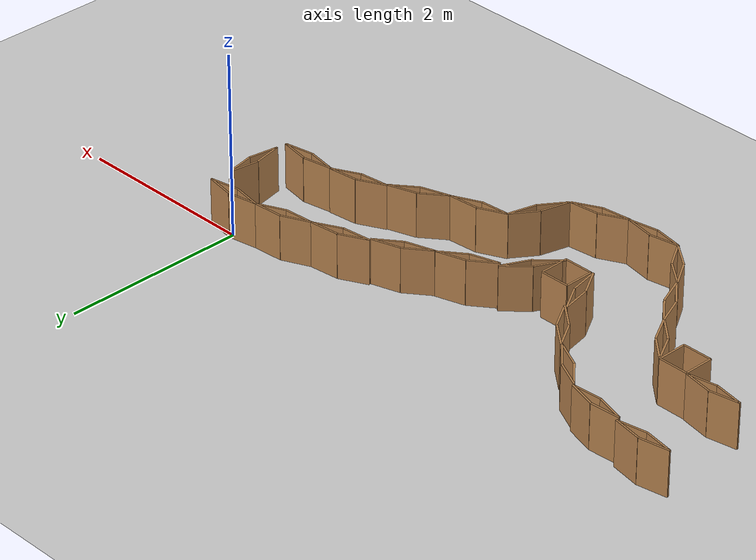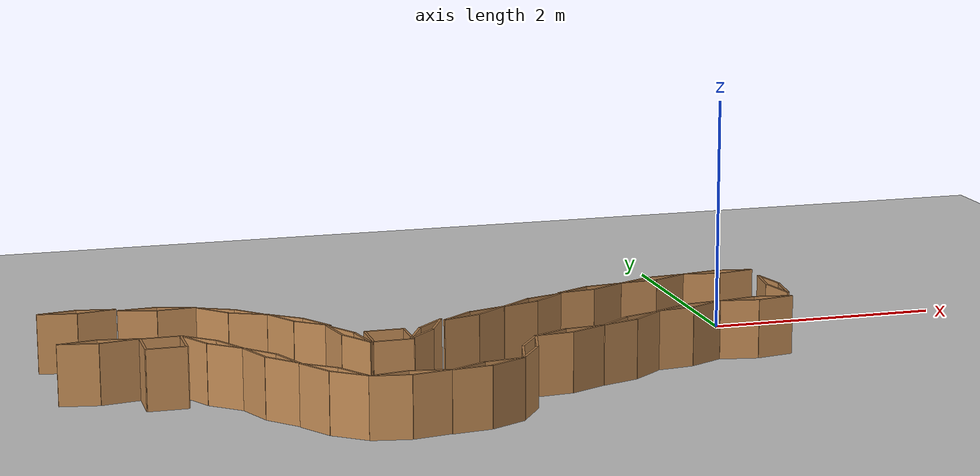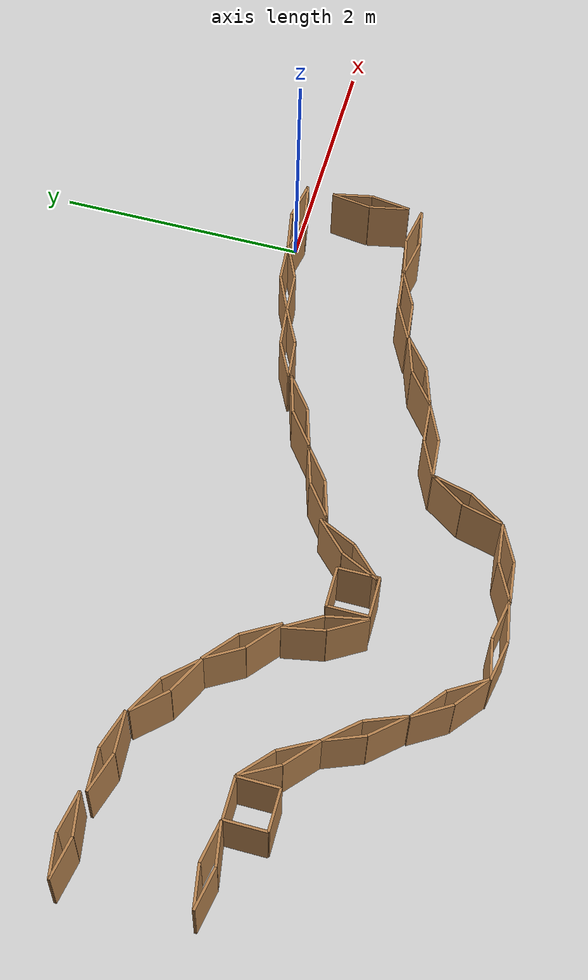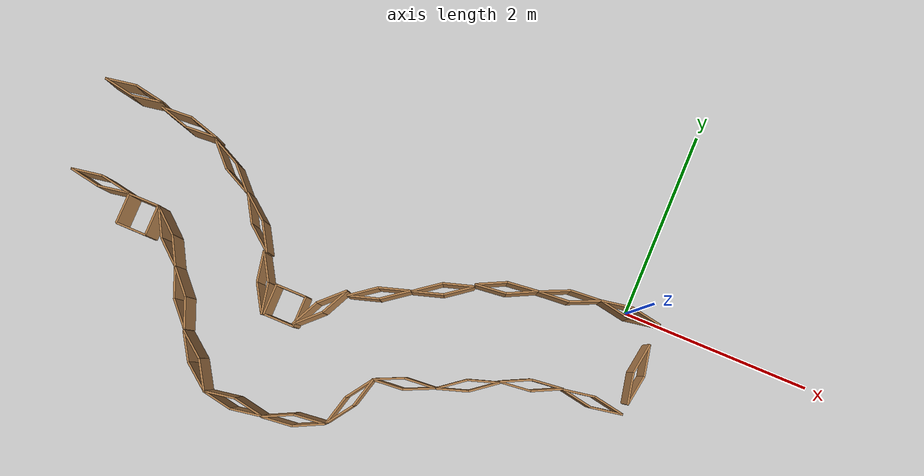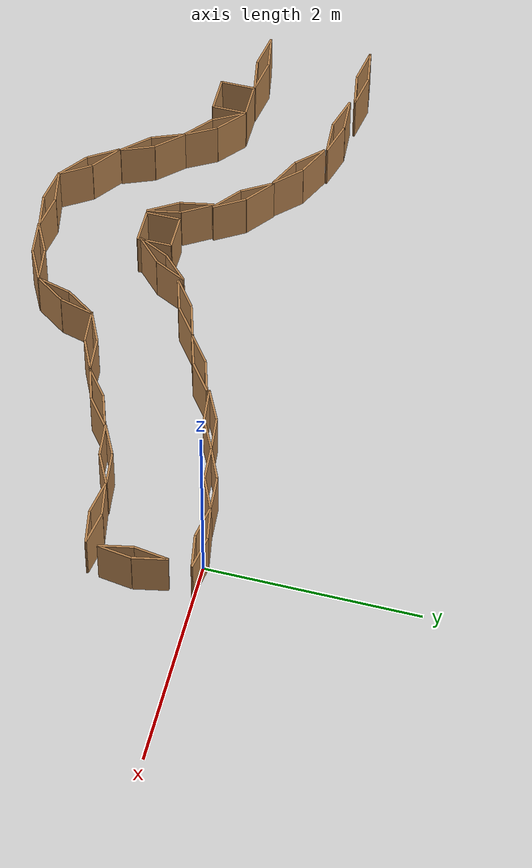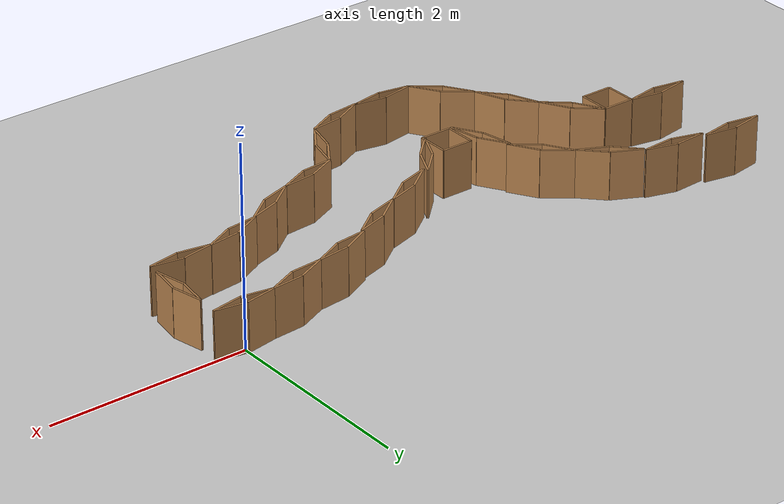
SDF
<sdf version="1.7">
 <world name="default">
  <model name="ground_plane">
   <static>1</static>
   <link name="link">
    <collision name="collision">
     <geometry><plane><normal>0 0 1</normal><size>100 100</size></plane></geometry>
     <surface>
      <contact><collide_bitmask>65535</collide_bitmask></contact>
      <friction><ode><mu>100</mu><mu2>50</mu2></ode></friction>
     </surface>
    </collision>
    <visual name="visual">
     <cast_shadows>0</cast_shadows>
     <geometry><plane><normal>0 0 1</normal><size>100 100</size></plane></geometry>
     <material>
      <script><uri>file://media/materials/scripts/gazebo.material</uri><name>Gazebo/Grey</name></script>
     </material>
    </visual>
   </link>
  </model>
  <light name="sun" type="directional">
   <pose>0 0 10 0 -0 0</pose>
   <diffuse>0.8 0.8 0.8 1</diffuse>
   <specular>0.2 0.2 0.2 1</specular>
   <attenuation>
    <range>1000</range>
    <constant>0.9</constant>
    <linear>0.01</linear>
    <quadratic>0.001</quadratic>
   </attenuation>
   <direction>-0.5 0.1 -0.9</direction>
   <spot><inner_angle>0</inner_angle><outer_angle>0</outer_angle><falloff>0</falloff></spot>
  </light>
  <model name="folded_box">
   <pose>-0.004082 -0.01385 0 0 -0 0</pose>
   <static>1</static>
   <link name="box1">
    <pose>0.16 -0.028218 0.25 0 -0 0.174533</pose>
    <collision name="collision"><geometry><box><size>0.325 0.05 0.5</size></box></geometry></collision>
    <visual name="visual">
     <geometry><box><size>0.325 0.02 0.5</size></box></geometry>
     <material>
      <script><uri>file://media/materials/scripts/gazebo.material</uri><name>Gazebo/WoodPallet</name></script>
     </material>
    </visual>
   </link>
   <link name="box2">
    <pose>0.16 0.028218 0.25 0 0 -0.174533</pose>
    <collision name="collision"><geometry><box><size>0.325 0.05 0.5</size></box></geometry></collision>
    <visual name="visual">
     <geometry><box><size>0.325 0.02 0.5</size></box></geometry>
     <material>
      <script><uri>file://media/materials/scripts/gazebo.material</uri><name>Gazebo/WoodPallet</name></script>
     </material>
    </visual>
   </link>
   <link name="box3">
    <pose>-0.16 0.028218 0.25 0 -0 0.174533</pose>
    <collision name="collision"><geometry><box><size>0.325 0.05 0.5</size></box></geometry></collision>
    <visual name="visual">
     <geometry><box><size>0.325 0.02 0.5</size></box></geometry>
     <material>
      <script><uri>file://media/materials/scripts/gazebo.material</uri><name>Gazebo/WoodPallet</name></script>
     </material>
    </visual>
   </link>
   <link name="box4">
    <pose>-0.16 -0.028218 0.25 0 0 -0.174533</pose>
    <collision name="collision"><geometry><box><size>0.325 0.05 0.5</size></box></geometry></collision>
    <visual name="visual">
     <geometry><box><size>0.325 0.02 0.5</size></box></geometry>
     <material>
      <script><uri>file://media/materials/scripts/gazebo.material</uri><name>Gazebo/WoodPallet</name></script>
     </material>
    </visual>
   </link>
  </model>
  <gravity>0 0 -9.8</gravity>
  <magnetic_field>6e-06 2.3e-05 -4.2e-05</magnetic_field>
  <atmosphere type="adiabatic"/>
  <physics name="default_physics" default="0" type="ode">
   <max_step_size>0.001</max_step_size>
   <real_time_factor>1</real_time_factor>
   <real_time_update_rate>1000</real_time_update_rate>
  </physics>
  <scene><ambient>0.4 0.4 0.4 1</ambient><background>0.7 0.7 0.7 1</background><shadows>1</shadows></scene>
  <audio><device>default</device></audio>
  <spherical_coordinates>
   <surface_model>EARTH_WGS84</surface_model>
   <latitude_deg>0</latitude_deg>
   <longitude_deg>0</longitude_deg>
   <elevation>0</elevation>
   <heading_deg>0</heading_deg>
  </spherical_coordinates>
  <model name="folded_box_clone">
   <static>1</static>
   <link name="box1">
    <pose>0.16 -0.028218 0.25 0 -0 0.174533</pose>
    <collision name="collision"><geometry><box><size>0.325 0.05 0.5</size></box></geometry></collision>
    <visual name="visual">
     <geometry><box><size>0.325 0.02 0.5</size></box></geometry>
     <material>
      <script><uri>file://media/materials/scripts/gazebo.material</uri><name>Gazebo/WoodPallet</name></script>
     </material>
    </visual>
   </link>
   <link name="box2">
    <pose>0.16 0.028218 0.25 0 0 -0.174533</pose>
    <collision name="collision"><geometry><box><size>0.325 0.05 0.5</size></box></geometry></collision>
    <visual name="visual">
     <geometry><box><size>0.325 0.02 0.5</size></box></geometry>
     <material>
      <script><uri>file://media/materials/scripts/gazebo.material</uri><name>Gazebo/WoodPallet</name></script>
     </material>
    </visual>
   </link>
   <link name="box3">
    <pose>-0.16 0.028218 0.25 0 -0 0.174533</pose>
    <collision name="collision"><geometry><box><size>0.325 0.05 0.5</size></box></geometry></collision>
    <visual name="visual">
     <geometry><box><size>0.325 0.02 0.5</size></box></geometry>
     <material>
      <script><uri>file://media/materials/scripts/gazebo.material</uri><name>Gazebo/WoodPallet</name></script>
     </material>
    </visual>
   </link>
   <link name="box4">
    <pose>-0.16 -0.028218 0.25 0 0 -0.174533</pose>
    <collision name="collision"><geometry><box><size>0.325 0.05 0.5</size></box></geometry></collision>
    <visual name="visual">
     <geometry><box><size>0.325 0.02 0.5</size></box></geometry>
     <material>
      <script><uri>file://media/materials/scripts/gazebo.material</uri><name>Gazebo/WoodPallet</name></script>
     </material>
    </visual>
   </link>
   <pose>-0.018518 -0.981342 0 0 -0 0</pose>
  </model>
  <model name="folded_box_clone_clone">
   <static>1</static>
   <link name="box1">
    <pose>0.16 -0.028218 0.25 0 -0 0.174533</pose>
    <collision name="collision"><geometry><box><size>0.325 0.05 0.5</size></box></geometry></collision>
    <visual name="visual">
     <geometry><box><size>0.325 0.02 0.5</size></box></geometry>
     <material>
      <script><uri>file://media/materials/scripts/gazebo.material</uri><name>Gazebo/WoodPallet</name></script>
     </material>
    </visual>
   </link>
   <link name="box2">
    <pose>0.16 0.028218 0.25 0 0 -0.174533</pose>
    <collision name="collision"><geometry><box><size>0.325 0.05 0.5</size></box></geometry></collision>
    <visual name="visual">
     <geometry><box><size>0.325 0.02 0.5</size></box></geometry>
     <material>
      <script><uri>file://media/materials/scripts/gazebo.material</uri><name>Gazebo/WoodPallet</name></script>
     </material>
    </visual>
   </link>
   <link name="box3">
    <pose>-0.16 0.028218 0.25 0 -0 0.174533</pose>
    <collision name="collision"><geometry><box><size>0.325 0.05 0.5</size></box></geometry></collision>
    <visual name="visual">
     <geometry><box><size>0.325 0.02 0.5</size></box></geometry>
     <material>
      <script><uri>file://media/materials/scripts/gazebo.material</uri><name>Gazebo/WoodPallet</name></script>
     </material>
    </visual>
   </link>
   <link name="box4">
    <pose>-0.16 -0.028218 0.25 0 0 -0.174533</pose>
    <collision name="collision"><geometry><box><size>0.325 0.05 0.5</size></box></geometry></collision>
    <visual name="visual">
     <geometry><box><size>0.325 0.02 0.5</size></box></geometry>
     <material>
      <script><uri>file://media/materials/scripts/gazebo.material</uri><name>Gazebo/WoodPallet</name></script>
     </material>
    </visual>
   </link>
   <pose>-0.645001 -1.06489 0 0 -0 0.285681</pose>
  </model>
  <model name="folded_box_clone_clone_clone">
   <static>1</static>
   <link name="box1">
    <pose>0.16 -0.028218 0.25 0 -0 0.174533</pose>
    <collision name="collision"><geometry><box><size>0.325 0.05 0.5</size></box></geometry></collision>
    <visual name="visual">
     <geometry><box><size>0.325 0.02 0.5</size></box></geometry>
     <material>
      <script><uri>file://media/materials/scripts/gazebo.material</uri><name>Gazebo/WoodPallet</name></script>
     </material>
    </visual>
   </link>
   <link name="box2">
    <pose>0.16 0.028218 0.25 0 0 -0.174533</pose>
    <collision name="collision"><geometry><box><size>0.325 0.05 0.5</size></box></geometry></collision>
    <visual name="visual">
     <geometry><box><size>0.325 0.02 0.5</size></box></geometry>
     <material>
      <script><uri>file://media/materials/scripts/gazebo.material</uri><name>Gazebo/WoodPallet</name></script>
     </material>
    </visual>
   </link>
   <link name="box3">
    <pose>-0.16 0.028218 0.25 0 -0 0.174533</pose>
    <collision name="collision"><geometry><box><size>0.325 0.05 0.5</size></box></geometry></collision>
    <visual name="visual">
     <geometry><box><size>0.325 0.02 0.5</size></box></geometry>
     <material>
      <script><uri>file://media/materials/scripts/gazebo.material</uri><name>Gazebo/WoodPallet</name></script>
     </material>
    </visual>
   </link>
   <link name="box4">
    <pose>-0.16 -0.028218 0.25 0 0 -0.174533</pose>
    <collision name="collision"><geometry><box><size>0.325 0.05 0.5</size></box></geometry></collision>
    <visual name="visual">
     <geometry><box><size>0.325 0.02 0.5</size></box></geometry>
     <material>
      <script><uri>file://media/materials/scripts/gazebo.material</uri><name>Gazebo/WoodPallet</name></script>
     </material>
    </visual>
   </link>
   <pose>-0.628375 -0.092627 0 0 -0 0.250838</pose>
  </model>
  <model name="folded_box_clone_clone_clone_0">
   <static>1</static>
   <link name="box1">
    <pose>0.16 -0.028218 0.25 0 -0 0.174533</pose>
    <collision name="collision"><geometry><box><size>0.325 0.05 0.5</size></box></geometry></collision>
    <visual name="visual">
     <geometry><box><size>0.325 0.02 0.5</size></box></geometry>
     <material>
      <script><uri>file://media/materials/scripts/gazebo.material</uri><name>Gazebo/WoodPallet</name></script>
     </material>
    </visual>
   </link>
   <link name="box2">
    <pose>0.16 0.028218 0.25 0 0 -0.174533</pose>
    <collision name="collision"><geometry><box><size>0.325 0.05 0.5</size></box></geometry></collision>
    <visual name="visual">
     <geometry><box><size>0.325 0.02 0.5</size></box></geometry>
     <material>
      <script><uri>file://media/materials/scripts/gazebo.material</uri><name>Gazebo/WoodPallet</name></script>
     </material>
    </visual>
   </link>
   <link name="box3">
    <pose>-0.16 0.028218 0.25 0 -0 0.174533</pose>
    <collision name="collision"><geometry><box><size>0.325 0.05 0.5</size></box></geometry></collision>
    <visual name="visual">
     <geometry><box><size>0.325 0.02 0.5</size></box></geometry>
     <material>
      <script><uri>file://media/materials/scripts/gazebo.material</uri><name>Gazebo/WoodPallet</name></script>
     </material>
    </visual>
   </link>
   <link name="box4">
    <pose>-0.16 -0.028218 0.25 0 0 -0.174533</pose>
    <collision name="collision"><geometry><box><size>0.325 0.05 0.5</size></box></geometry></collision>
    <visual name="visual">
     <geometry><box><size>0.325 0.02 0.5</size></box></geometry>
     <material>
      <script><uri>file://media/materials/scripts/gazebo.material</uri><name>Gazebo/WoodPallet</name></script>
     </material>
    </visual>
   </link>
   <pose>-1.22509 -1.3107 0 0 -0 0.486291</pose>
  </model>
  <model name="folded_box_clone_clone_clone_0_clone">
   <static>1</static>
   <link name="box1">
    <pose>0.16 -0.028218 0.25 0 -0 0.174533</pose>
    <collision name="collision"><geometry><box><size>0.325 0.05 0.5</size></box></geometry></collision>
    <visual name="visual">
     <geometry><box><size>0.325 0.02 0.5</size></box></geometry>
     <material>
      <script><uri>file://media/materials/scripts/gazebo.material</uri><name>Gazebo/WoodPallet</name></script>
     </material>
    </visual>
   </link>
   <link name="box2">
    <pose>0.16 0.028218 0.25 0 0 -0.174533</pose>
    <collision name="collision"><geometry><box><size>0.325 0.05 0.5</size></box></geometry></collision>
    <visual name="visual">
     <geometry><box><size>0.325 0.02 0.5</size></box></geometry>
     <material>
      <script><uri>file://media/materials/scripts/gazebo.material</uri><name>Gazebo/WoodPallet</name></script>
     </material>
    </visual>
   </link>
   <link name="box3">
    <pose>-0.16 0.028218 0.25 0 -0 0.174533</pose>
    <collision name="collision"><geometry><box><size>0.325 0.05 0.5</size></box></geometry></collision>
    <visual name="visual">
     <geometry><box><size>0.325 0.02 0.5</size></box></geometry>
     <material>
      <script><uri>file://media/materials/scripts/gazebo.material</uri><name>Gazebo/WoodPallet</name></script>
     </material>
    </visual>
   </link>
   <link name="box4">
    <pose>-0.16 -0.028218 0.25 0 0 -0.174533</pose>
    <collision name="collision"><geometry><box><size>0.325 0.05 0.5</size></box></geometry></collision>
    <visual name="visual">
     <geometry><box><size>0.325 0.02 0.5</size></box></geometry>
     <material>
      <script><uri>file://media/materials/scripts/gazebo.material</uri><name>Gazebo/WoodPallet</name></script>
     </material>
    </visual>
   </link>
   <pose>-1.82404 -1.54183 0 0 -0 0.255467</pose>
  </model>
  <model name="folded_box_clone_clone_clone_0_clone_clone">
   <static>1</static>
   <link name="box1">
    <pose>0.16 -0.028218 0.25 0 -0 0.174533</pose>
    <collision name="collision"><geometry><box><size>0.325 0.05 0.5</size></box></geometry></collision>
    <visual name="visual">
     <geometry><box><size>0.325 0.02 0.5</size></box></geometry>
     <material>
      <script><uri>file://media/materials/scripts/gazebo.material</uri><name>Gazebo/WoodPallet</name></script>
     </material>
    </visual>
   </link>
   <link name="box2">
    <pose>0.16 0.028218 0.25 0 0 -0.174533</pose>
    <collision name="collision"><geometry><box><size>0.325 0.05 0.5</size></box></geometry></collision>
    <visual name="visual">
     <geometry><box><size>0.325 0.02 0.5</size></box></geometry>
     <material>
      <script><uri>file://media/materials/scripts/gazebo.material</uri><name>Gazebo/WoodPallet</name></script>
     </material>
    </visual>
   </link>
   <link name="box3">
    <pose>-0.16 0.028218 0.25 0 -0 0.174533</pose>
    <collision name="collision"><geometry><box><size>0.325 0.05 0.5</size></box></geometry></collision>
    <visual name="visual">
     <geometry><box><size>0.325 0.02 0.5</size></box></geometry>
     <material>
      <script><uri>file://media/materials/scripts/gazebo.material</uri><name>Gazebo/WoodPallet</name></script>
     </material>
    </visual>
   </link>
   <link name="box4">
    <pose>-0.16 -0.028218 0.25 0 0 -0.174533</pose>
    <collision name="collision"><geometry><box><size>0.325 0.05 0.5</size></box></geometry></collision>
    <visual name="visual">
     <geometry><box><size>0.325 0.02 0.5</size></box></geometry>
     <material>
      <script><uri>file://media/materials/scripts/gazebo.material</uri><name>Gazebo/WoodPallet</name></script>
     </material>
    </visual>
   </link>
   <pose>-2.25389 -1.91004 0 0 -0 1.14382</pose>
  </model>
  <model name="folded_box_clone_clone_clone_clone">
   <static>1</static>
   <link name="box1">
    <pose>0.16 -0.028218 0.25 0 -0 0.174533</pose>
    <collision name="collision"><geometry><box><size>0.325 0.05 0.5</size></box></geometry></collision>
    <visual name="visual">
     <geometry><box><size>0.325 0.02 0.5</size></box></geometry>
     <material>
      <script><uri>file://media/materials/scripts/gazebo.material</uri><name>Gazebo/WoodPallet</name></script>
     </material>
    </visual>
   </link>
   <link name="box2">
    <pose>0.16 0.028218 0.25 0 0 -0.174533</pose>
    <collision name="collision"><geometry><box><size>0.325 0.05 0.5</size></box></geometry></collision>
    <visual name="visual">
     <geometry><box><size>0.325 0.02 0.5</size></box></geometry>
     <material>
      <script><uri>file://media/materials/scripts/gazebo.material</uri><name>Gazebo/WoodPallet</name></script>
     </material>
    </visual>
   </link>
   <link name="box3">
    <pose>-0.16 0.028218 0.25 0 -0 0.174533</pose>
    <collision name="collision"><geometry><box><size>0.325 0.05 0.5</size></box></geometry></collision>
    <visual name="visual">
     <geometry><box><size>0.325 0.02 0.5</size></box></geometry>
     <material>
      <script><uri>file://media/materials/scripts/gazebo.material</uri><name>Gazebo/WoodPallet</name></script>
     </material>
    </visual>
   </link>
   <link name="box4">
    <pose>-0.16 -0.028218 0.25 0 0 -0.174533</pose>
    <collision name="collision"><geometry><box><size>0.325 0.05 0.5</size></box></geometry></collision>
    <visual name="visual">
     <geometry><box><size>0.325 0.02 0.5</size></box></geometry>
     <material>
      <script><uri>file://media/materials/scripts/gazebo.material</uri><name>Gazebo/WoodPallet</name></script>
     </material>
    </visual>
   </link>
   <pose>-1.24426 -0.260196 0 0 -0 0.285681</pose>
  </model>
  <model name="folded_box_clone_clone_clone_clone_clone">
   <static>1</static>
   <link name="box1">
    <pose>0.16 -0.028218 0.25 0 -0 0.174533</pose>
    <collision name="collision"><geometry><box><size>0.325 0.05 0.5</size></box></geometry></collision>
    <visual name="visual">
     <geometry><box><size>0.325 0.02 0.5</size></box></geometry>
     <material>
      <script><uri>file://media/materials/scripts/gazebo.material</uri><name>Gazebo/WoodPallet</name></script>
     </material>
    </visual>
   </link>
   <link name="box2">
    <pose>0.16 0.028218 0.25 0 0 -0.174533</pose>
    <collision name="collision"><geometry><box><size>0.325 0.05 0.5</size></box></geometry></collision>
    <visual name="visual">
     <geometry><box><size>0.325 0.02 0.5</size></box></geometry>
     <material>
      <script><uri>file://media/materials/scripts/gazebo.material</uri><name>Gazebo/WoodPallet</name></script>
     </material>
    </visual>
   </link>
   <link name="box3">
    <pose>-0.16 0.028218 0.25 0 -0 0.174533</pose>
    <collision name="collision"><geometry><box><size>0.325 0.05 0.5</size></box></geometry></collision>
    <visual name="visual">
     <geometry><box><size>0.325 0.02 0.5</size></box></geometry>
     <material>
      <script><uri>file://media/materials/scripts/gazebo.material</uri><name>Gazebo/WoodPallet</name></script>
     </material>
    </visual>
   </link>
   <link name="box4">
    <pose>-0.16 -0.028218 0.25 0 0 -0.174533</pose>
    <collision name="collision"><geometry><box><size>0.325 0.05 0.5</size></box></geometry></collision>
    <visual name="visual">
     <geometry><box><size>0.325 0.02 0.5</size></box></geometry>
     <material>
      <script><uri>file://media/materials/scripts/gazebo.material</uri><name>Gazebo/WoodPallet</name></script>
     </material>
    </visual>
   </link>
   <pose>-1.8276 -0.516156 0 0 -0 0.470834</pose>
  </model>
  <model name="folded_box_clone_clone_clone_clone_clone_clone">
   <static>1</static>
   <link name="box1">
    <pose>0.16 -0.028218 0.25 0 -0 0.174533</pose>
    <collision name="collision"><geometry><box><size>0.325 0.05 0.5</size></box></geometry></collision>
    <visual name="visual">
     <geometry><box><size>0.325 0.02 0.5</size></box></geometry>
     <material>
      <script><uri>file://media/materials/scripts/gazebo.material</uri><name>Gazebo/WoodPallet</name></script>
     </material>
    </visual>
   </link>
   <link name="box2">
    <pose>0.16 0.028218 0.25 0 0 -0.174533</pose>
    <collision name="collision"><geometry><box><size>0.325 0.05 0.5</size></box></geometry></collision>
    <visual name="visual">
     <geometry><box><size>0.325 0.02 0.5</size></box></geometry>
     <material>
      <script><uri>file://media/materials/scripts/gazebo.material</uri><name>Gazebo/WoodPallet</name></script>
     </material>
    </visual>
   </link>
   <link name="box3">
    <pose>-0.16 0.028218 0.25 0 -0 0.174533</pose>
    <collision name="collision"><geometry><box><size>0.325 0.05 0.5</size></box></geometry></collision>
    <visual name="visual">
     <geometry><box><size>0.325 0.02 0.5</size></box></geometry>
     <material>
      <script><uri>file://media/materials/scripts/gazebo.material</uri><name>Gazebo/WoodPallet</name></script>
     </material>
    </visual>
   </link>
   <link name="box4">
    <pose>-0.16 -0.028218 0.25 0 0 -0.174533</pose>
    <collision name="collision"><geometry><box><size>0.325 0.05 0.5</size></box></geometry></collision>
    <visual name="visual">
     <geometry><box><size>0.325 0.02 0.5</size></box></geometry>
     <material>
      <script><uri>file://media/materials/scripts/gazebo.material</uri><name>Gazebo/WoodPallet</name></script>
     </material>
    </visual>
   </link>
   <pose>-2.40643 -0.805254 0 0 -0 0.470834</pose>
  </model>
  <model name="folded_box_clone_clone_clone_clone_clone_clone_clone">
   <static>1</static>
   <link name="box1">
    <pose>0.16 -0.028218 0.25 0 -0 0.174533</pose>
    <collision name="collision"><geometry><box><size>0.325 0.05 0.5</size></box></geometry></collision>
    <visual name="visual">
     <geometry><box><size>0.325 0.02 0.5</size></box></geometry>
     <material>
      <script><uri>file://media/materials/scripts/gazebo.material</uri><name>Gazebo/WoodPallet</name></script>
     </material>
    </visual>
   </link>
   <link name="box2">
    <pose>0.16 0.028218 0.25 0 0 -0.174533</pose>
    <collision name="collision"><geometry><box><size>0.325 0.05 0.5</size></box></geometry></collision>
    <visual name="visual">
     <geometry><box><size>0.325 0.02 0.5</size></box></geometry>
     <material>
      <script><uri>file://media/materials/scripts/gazebo.material</uri><name>Gazebo/WoodPallet</name></script>
     </material>
    </visual>
   </link>
   <link name="box3">
    <pose>-0.16 0.028218 0.25 0 -0 0.174533</pose>
    <collision name="collision"><geometry><box><size>0.325 0.05 0.5</size></box></geometry></collision>
    <visual name="visual">
     <geometry><box><size>0.325 0.02 0.5</size></box></geometry>
     <material>
      <script><uri>file://media/materials/scripts/gazebo.material</uri><name>Gazebo/WoodPallet</name></script>
     </material>
    </visual>
   </link>
   <link name="box4">
    <pose>-0.16 -0.028218 0.25 0 0 -0.174533</pose>
    <collision name="collision"><geometry><box><size>0.325 0.05 0.5</size></box></geometry></collision>
    <visual name="visual">
     <geometry><box><size>0.325 0.02 0.5</size></box></geometry>
     <material>
      <script><uri>file://media/materials/scripts/gazebo.material</uri><name>Gazebo/WoodPallet</name></script>
     </material>
    </visual>
   </link>
   <pose>-2.89593 -1.16411 0 0 -0 0.946587</pose>
  </model>
  <model name="folded_box_clone_clone_clone_0_clone_clone_clone">
   <static>1</static>
   <link name="box1">
    <pose>0.16 -0.028218 0.25 0 -0 0.174533</pose>
    <collision name="collision"><geometry><box><size>0.325 0.05 0.5</size></box></geometry></collision>
    <visual name="visual">
     <geometry><box><size>0.325 0.02 0.5</size></box></geometry>
     <material>
      <script><uri>file://media/materials/scripts/gazebo.material</uri><name>Gazebo/WoodPallet</name></script>
     </material>
    </visual>
   </link>
   <link name="box2">
    <pose>0.16 0.028218 0.25 0 0 -0.174533</pose>
    <collision name="collision"><geometry><box><size>0.325 0.05 0.5</size></box></geometry></collision>
    <visual name="visual">
     <geometry><box><size>0.325 0.02 0.5</size></box></geometry>
     <material>
      <script><uri>file://media/materials/scripts/gazebo.material</uri><name>Gazebo/WoodPallet</name></script>
     </material>
    </visual>
   </link>
   <link name="box3">
    <pose>-0.16 0.028218 0.25 0 -0 0.174533</pose>
    <collision name="collision"><geometry><box><size>0.325 0.05 0.5</size></box></geometry></collision>
    <visual name="visual">
     <geometry><box><size>0.325 0.02 0.5</size></box></geometry>
     <material>
      <script><uri>file://media/materials/scripts/gazebo.material</uri><name>Gazebo/WoodPallet</name></script>
     </material>
    </visual>
   </link>
   <link name="box4">
    <pose>-0.16 -0.028218 0.25 0 0 -0.174533</pose>
    <collision name="collision"><geometry><box><size>0.325 0.05 0.5</size></box></geometry></collision>
    <visual name="visual">
     <geometry><box><size>0.325 0.02 0.5</size></box></geometry>
     <material>
      <script><uri>file://media/materials/scripts/gazebo.material</uri><name>Gazebo/WoodPallet</name></script>
     </material>
    </visual>
   </link>
   <pose>-2.69667 -2.29807 0 0 -0 0.284525</pose>
  </model>
  <model name="folded_box_2">
   <pose>-3.2268 -1.28295 0 0 -0 0</pose>
   <static>1</static>
   <link name="box1">
    <pose>0 0.16 0.25 0 -0 0</pose>
    <collision name="collision"><geometry><box><size>0.325 0.05 0.5</size></box></geometry></collision>
    <visual name="visual">
     <geometry><box><size>0.325 0.02 0.5</size></box></geometry>
     <material>
      <script><uri>file://media/materials/scripts/gazebo.material</uri><name>Gazebo/WoodPallet</name></script>
     </material>
    </visual>
   </link>
   <link name="box2">
    <pose>0 -0.16 0.25 0 -0 0</pose>
    <collision name="collision"><geometry><box><size>0.325 0.05 0.5</size></box></geometry></collision>
    <visual name="visual">
     <geometry><box><size>0.325 0.02 0.5</size></box></geometry>
     <material>
      <script><uri>file://media/materials/scripts/gazebo.material</uri><name>Gazebo/WoodPallet</name></script>
     </material>
    </visual>
   </link>
   <link name="box3">
    <pose>0.16 0 0.25 0 -0 1.5708</pose>
    <collision name="collision"><geometry><box><size>0.325 0.05 0.5</size></box></geometry></collision>
    <visual name="visual">
     <geometry><box><size>0.325 0.02 0.5</size></box></geometry>
     <material>
      <script><uri>file://media/materials/scripts/gazebo.material</uri><name>Gazebo/WoodPallet</name></script>
     </material>
    </visual>
   </link>
   <link name="box4">
    <pose>-0.16 0 0.25 0 -0 1.5708</pose>
    <collision name="collision"><geometry><box><size>0.325 0.05 0.5</size></box></geometry></collision>
    <visual name="visual">
     <geometry><box><size>0.325 0.02 0.5</size></box></geometry>
     <material>
      <script><uri>file://media/materials/scripts/gazebo.material</uri><name>Gazebo/WoodPallet</name></script>
     </material>
    </visual>
   </link>
  </model>
  <model name="folded_box_clone_clone_clone_0_clone_clone_clone_clone">
   <static>1</static>
   <link name="box1">
    <pose>0.16 -0.028218 0.25 0 -0 0.174533</pose>
    <collision name="collision"><geometry><box><size>0.325 0.05 0.5</size></box></geometry></collision>
    <visual name="visual">
     <geometry><box><size>0.325 0.02 0.5</size></box></geometry>
     <material>
      <script><uri>file://media/materials/scripts/gazebo.material</uri><name>Gazebo/WoodPallet</name></script>
     </material>
    </visual>
   </link>
   <link name="box2">
    <pose>0.16 0.028218 0.25 0 0 -0.174533</pose>
    <collision name="collision"><geometry><box><size>0.325 0.05 0.5</size></box></geometry></collision>
    <visual name="visual">
     <geometry><box><size>0.325 0.02 0.5</size></box></geometry>
     <material>
      <script><uri>file://media/materials/scripts/gazebo.material</uri><name>Gazebo/WoodPallet</name></script>
     </material>
    </visual>
   </link>
   <link name="box3">
    <pose>-0.16 0.028218 0.25 0 -0 0.174533</pose>
    <collision name="collision"><geometry><box><size>0.325 0.05 0.5</size></box></geometry></collision>
    <visual name="visual">
     <geometry><box><size>0.325 0.02 0.5</size></box></geometry>
     <material>
      <script><uri>file://media/materials/scripts/gazebo.material</uri><name>Gazebo/WoodPallet</name></script>
     </material>
    </visual>
   </link>
   <link name="box4">
    <pose>-0.16 -0.028218 0.25 0 0 -0.174533</pose>
    <collision name="collision"><geometry><box><size>0.325 0.05 0.5</size></box></geometry></collision>
    <visual name="visual">
     <geometry><box><size>0.325 0.02 0.5</size></box></geometry>
     <material>
      <script><uri>file://media/materials/scripts/gazebo.material</uri><name>Gazebo/WoodPallet</name></script>
     </material>
    </visual>
   </link>
   <pose>-3.31803 -2.37847 0 0 0 -0.006556</pose>
  </model>
  <model name="folded_box_clone_clone_clone_0_clone_clone_clone_clone_clone">
   <static>1</static>
   <link name="box1">
    <pose>0.16 -0.028218 0.25 0 -0 0.174533</pose>
    <collision name="collision"><geometry><box><size>0.325 0.05 0.5</size></box></geometry></collision>
    <visual name="visual">
     <geometry><box><size>0.325 0.02 0.5</size></box></geometry>
     <material>
      <script><uri>file://media/materials/scripts/gazebo.material</uri><name>Gazebo/WoodPallet</name></script>
     </material>
    </visual>
   </link>
   <link name="box2">
    <pose>0.16 0.028218 0.25 0 0 -0.174533</pose>
    <collision name="collision"><geometry><box><size>0.325 0.05 0.5</size></box></geometry></collision>
    <visual name="visual">
     <geometry><box><size>0.325 0.02 0.5</size></box></geometry>
     <material>
      <script><uri>file://media/materials/scripts/gazebo.material</uri><name>Gazebo/WoodPallet</name></script>
     </material>
    </visual>
   </link>
   <link name="box3">
    <pose>-0.16 0.028218 0.25 0 -0 0.174533</pose>
    <collision name="collision"><geometry><box><size>0.325 0.05 0.5</size></box></geometry></collision>
    <visual name="visual">
     <geometry><box><size>0.325 0.02 0.5</size></box></geometry>
     <material>
      <script><uri>file://media/materials/scripts/gazebo.material</uri><name>Gazebo/WoodPallet</name></script>
     </material>
    </visual>
   </link>
   <link name="box4">
    <pose>-0.16 -0.028218 0.25 0 0 -0.174533</pose>
    <collision name="collision"><geometry><box><size>0.325 0.05 0.5</size></box></geometry></collision>
    <visual name="visual">
     <geometry><box><size>0.325 0.02 0.5</size></box></geometry>
     <material>
      <script><uri>file://media/materials/scripts/gazebo.material</uri><name>Gazebo/WoodPallet</name></script>
     </material>
    </visual>
   </link>
   <pose>-3.84628 -2.13509 0 0 0 -0.836745</pose>
  </model>
  <model name="folded_box_clone_clone_clone_clone_clone_clone_clone_clone">
   <static>1</static>
   <link name="box1">
    <pose>0.16 -0.028218 0.25 0 -0 0.174533</pose>
    <collision name="collision"><geometry><box><size>0.325 0.05 0.5</size></box></geometry></collision>
    <visual name="visual">
     <geometry><box><size>0.325 0.02 0.5</size></box></geometry>
     <material>
      <script><uri>file://media/materials/scripts/gazebo.material</uri><name>Gazebo/WoodPallet</name></script>
     </material>
    </visual>
   </link>
   <link name="box2">
    <pose>0.16 0.028218 0.25 0 0 -0.174533</pose>
    <collision name="collision"><geometry><box><size>0.325 0.05 0.5</size></box></geometry></collision>
    <visual name="visual">
     <geometry><box><size>0.325 0.02 0.5</size></box></geometry>
     <material>
      <script><uri>file://media/materials/scripts/gazebo.material</uri><name>Gazebo/WoodPallet</name></script>
     </material>
    </visual>
   </link>
   <link name="box3">
    <pose>-0.16 0.028218 0.25 0 -0 0.174533</pose>
    <collision name="collision"><geometry><box><size>0.325 0.05 0.5</size></box></geometry></collision>
    <visual name="visual">
     <geometry><box><size>0.325 0.02 0.5</size></box></geometry>
     <material>
      <script><uri>file://media/materials/scripts/gazebo.material</uri><name>Gazebo/WoodPallet</name></script>
     </material>
    </visual>
   </link>
   <link name="box4">
    <pose>-0.16 -0.028218 0.25 0 0 -0.174533</pose>
    <collision name="collision"><geometry><box><size>0.325 0.05 0.5</size></box></geometry></collision>
    <visual name="visual">
     <geometry><box><size>0.325 0.02 0.5</size></box></geometry>
     <material>
      <script><uri>file://media/materials/scripts/gazebo.material</uri><name>Gazebo/WoodPallet</name></script>
     </material>
    </visual>
   </link>
   <pose>-3.5232 -1.15444 0 0 -0 1.93858</pose>
  </model>
  <model name="folded_box_clone_clone_clone_0_clone_clone_clone_clone_clone_clone">
   <static>1</static>
   <link name="box1">
    <pose>0.16 -0.028218 0.25 0 -0 0.174533</pose>
    <collision name="collision"><geometry><box><size>0.325 0.05 0.5</size></box></geometry></collision>
    <visual name="visual">
     <geometry><box><size>0.325 0.02 0.5</size></box></geometry>
     <material>
      <script><uri>file://media/materials/scripts/gazebo.material</uri><name>Gazebo/WoodPallet</name></script>
     </material>
    </visual>
   </link>
   <link name="box2">
    <pose>0.16 0.028218 0.25 0 0 -0.174533</pose>
    <collision name="collision"><geometry><box><size>0.325 0.05 0.5</size></box></geometry></collision>
    <visual name="visual">
     <geometry><box><size>0.325 0.02 0.5</size></box></geometry>
     <material>
      <script><uri>file://media/materials/scripts/gazebo.material</uri><name>Gazebo/WoodPallet</name></script>
     </material>
    </visual>
   </link>
   <link name="box3">
    <pose>-0.16 0.028218 0.25 0 -0 0.174533</pose>
    <collision name="collision"><geometry><box><size>0.325 0.05 0.5</size></box></geometry></collision>
    <visual name="visual">
     <geometry><box><size>0.325 0.02 0.5</size></box></geometry>
     <material>
      <script><uri>file://media/materials/scripts/gazebo.material</uri><name>Gazebo/WoodPallet</name></script>
     </material>
    </visual>
   </link>
   <link name="box4">
    <pose>-0.16 -0.028218 0.25 0 0 -0.174533</pose>
    <collision name="collision"><geometry><box><size>0.325 0.05 0.5</size></box></geometry></collision>
    <visual name="visual">
     <geometry><box><size>0.325 0.02 0.5</size></box></geometry>
     <material>
      <script><uri>file://media/materials/scripts/gazebo.material</uri><name>Gazebo/WoodPallet</name></script>
     </material>
    </visual>
   </link>
   <pose>-4.22734 -1.61654 0 0 0 -1.0126</pose>
  </model>
  <model name="folded_box_clone_clone_clone_0_clone_clone_clone_clone_clone_clone_clone">
   <static>1</static>
   <link name="box1">
    <pose>0.16 -0.028218 0.25 0 -0 0.174533</pose>
    <collision name="collision"><geometry><box><size>0.325 0.05 0.5</size></box></geometry></collision>
    <visual name="visual">
     <geometry><box><size>0.325 0.02 0.5</size></box></geometry>
     <material>
      <script><uri>file://media/materials/scripts/gazebo.material</uri><name>Gazebo/WoodPallet</name></script>
     </material>
    </visual>
   </link>
   <link name="box2">
    <pose>0.16 0.028218 0.25 0 0 -0.174533</pose>
    <collision name="collision"><geometry><box><size>0.325 0.05 0.5</size></box></geometry></collision>
    <visual name="visual">
     <geometry><box><size>0.325 0.02 0.5</size></box></geometry>
     <material>
      <script><uri>file://media/materials/scripts/gazebo.material</uri><name>Gazebo/WoodPallet</name></script>
     </material>
    </visual>
   </link>
   <link name="box3">
    <pose>-0.16 0.028218 0.25 0 -0 0.174533</pose>
    <collision name="collision"><geometry><box><size>0.325 0.05 0.5</size></box></geometry></collision>
    <visual name="visual">
     <geometry><box><size>0.325 0.02 0.5</size></box></geometry>
     <material>
      <script><uri>file://media/materials/scripts/gazebo.material</uri><name>Gazebo/WoodPallet</name></script>
     </material>
    </visual>
   </link>
   <link name="box4">
    <pose>-0.16 -0.028218 0.25 0 0 -0.174533</pose>
    <collision name="collision"><geometry><box><size>0.325 0.05 0.5</size></box></geometry></collision>
    <visual name="visual">
     <geometry><box><size>0.325 0.02 0.5</size></box></geometry>
     <material>
      <script><uri>file://media/materials/scripts/gazebo.material</uri><name>Gazebo/WoodPallet</name></script>
     </material>
    </visual>
   </link>
   <pose>-4.59467 -1.10276 0 0 0 -0.88994</pose>
  </model>
  <model name="folded_box_clone_clone_clone_clone_clone_clone_clone_clone_clone">
   <static>1</static>
   <link name="box1">
    <pose>0.16 -0.028218 0.25 0 -0 0.174533</pose>
    <collision name="collision"><geometry><box><size>0.325 0.05 0.5</size></box></geometry></collision>
    <visual name="visual">
     <geometry><box><size>0.325 0.02 0.5</size></box></geometry>
     <material>
      <script><uri>file://media/materials/scripts/gazebo.material</uri><name>Gazebo/WoodPallet</name></script>
     </material>
    </visual>
   </link>
   <link name="box2">
    <pose>0.16 0.028218 0.25 0 0 -0.174533</pose>
    <collision name="collision"><geometry><box><size>0.325 0.05 0.5</size></box></geometry></collision>
    <visual name="visual">
     <geometry><box><size>0.325 0.02 0.5</size></box></geometry>
     <material>
      <script><uri>file://media/materials/scripts/gazebo.material</uri><name>Gazebo/WoodPallet</name></script>
     </material>
    </visual>
   </link>
   <link name="box3">
    <pose>-0.16 0.028218 0.25 0 -0 0.174533</pose>
    <collision name="collision"><geometry><box><size>0.325 0.05 0.5</size></box></geometry></collision>
    <visual name="visual">
     <geometry><box><size>0.325 0.02 0.5</size></box></geometry>
     <material>
      <script><uri>file://media/materials/scripts/gazebo.material</uri><name>Gazebo/WoodPallet</name></script>
     </material>
    </visual>
   </link>
   <link name="box4">
    <pose>-0.16 -0.028218 0.25 0 0 -0.174533</pose>
    <collision name="collision"><geometry><box><size>0.325 0.05 0.5</size></box></geometry></collision>
    <visual name="visual">
     <geometry><box><size>0.325 0.02 0.5</size></box></geometry>
     <material>
      <script><uri>file://media/materials/scripts/gazebo.material</uri><name>Gazebo/WoodPallet</name></script>
     </material>
    </visual>
   </link>
   <pose>-3.81601 -0.620157 0 0 -0 2.28459</pose>
  </model>
  <model name="folded_box_2_clone">
   <pose>-4.96166 -1.01293 0 0 -0 0</pose>
   <static>1</static>
   <link name="box1">
    <pose>0 0.16 0.25 0 -0 0</pose>
    <collision name="collision"><geometry><box><size>0.325 0.05 0.5</size></box></geometry></collision>
    <visual name="visual">
     <geometry><box><size>0.325 0.02 0.5</size></box></geometry>
     <material>
      <script><uri>file://media/materials/scripts/gazebo.material</uri><name>Gazebo/WoodPallet</name></script>
     </material>
    </visual>
   </link>
   <link name="box2">
    <pose>0 -0.16 0.25 0 -0 0</pose>
    <collision name="collision"><geometry><box><size>0.325 0.05 0.5</size></box></geometry></collision>
    <visual name="visual">
     <geometry><box><size>0.325 0.02 0.5</size></box></geometry>
     <material>
      <script><uri>file://media/materials/scripts/gazebo.material</uri><name>Gazebo/WoodPallet</name></script>
     </material>
    </visual>
   </link>
   <link name="box3">
    <pose>0.16 0 0.25 0 -0 1.5708</pose>
    <collision name="collision"><geometry><box><size>0.325 0.05 0.5</size></box></geometry></collision>
    <visual name="visual">
     <geometry><box><size>0.325 0.02 0.5</size></box></geometry>
     <material>
      <script><uri>file://media/materials/scripts/gazebo.material</uri><name>Gazebo/WoodPallet</name></script>
     </material>
    </visual>
   </link>
   <link name="box4">
    <pose>-0.16 0 0.25 0 -0 1.5708</pose>
    <collision name="collision"><geometry><box><size>0.325 0.05 0.5</size></box></geometry></collision>
    <visual name="visual">
     <geometry><box><size>0.325 0.02 0.5</size></box></geometry>
     <material>
      <script><uri>file://media/materials/scripts/gazebo.material</uri><name>Gazebo/WoodPallet</name></script>
     </material>
    </visual>
   </link>
  </model>
  <model name="folded_box_clone_clone_clone_clone_clone_clone_clone_clone_clone_clone">
   <static>1</static>
   <link name="box1">
    <pose>0.16 -0.028218 0.25 0 -0 0.174533</pose>
    <collision name="collision"><geometry><box><size>0.325 0.05 0.5</size></box></geometry></collision>
    <visual name="visual">
     <geometry><box><size>0.325 0.02 0.5</size></box></geometry>
     <material>
      <script><uri>file://media/materials/scripts/gazebo.material</uri><name>Gazebo/WoodPallet</name></script>
     </material>
    </visual>
   </link>
   <link name="box2">
    <pose>0.16 0.028218 0.25 0 0 -0.174533</pose>
    <collision name="collision"><geometry><box><size>0.325 0.05 0.5</size></box></geometry></collision>
    <visual name="visual">
     <geometry><box><size>0.325 0.02 0.5</size></box></geometry>
     <material>
      <script><uri>file://media/materials/scripts/gazebo.material</uri><name>Gazebo/WoodPallet</name></script>
     </material>
    </visual>
   </link>
   <link name="box3">
    <pose>-0.16 0.028218 0.25 0 -0 0.174533</pose>
    <collision name="collision"><geometry><box><size>0.325 0.05 0.5</size></box></geometry></collision>
    <visual name="visual">
     <geometry><box><size>0.325 0.02 0.5</size></box></geometry>
     <material>
      <script><uri>file://media/materials/scripts/gazebo.material</uri><name>Gazebo/WoodPallet</name></script>
     </material>
    </visual>
   </link>
   <link name="box4">
    <pose>-0.16 -0.028218 0.25 0 0 -0.174533</pose>
    <collision name="collision"><geometry><box><size>0.325 0.05 0.5</size></box></geometry></collision>
    <visual name="visual">
     <geometry><box><size>0.325 0.02 0.5</size></box></geometry>
     <material>
      <script><uri>file://media/materials/scripts/gazebo.material</uri><name>Gazebo/WoodPallet</name></script>
     </material>
    </visual>
   </link>
   <pose>-4.2864 -0.196667 0 0 -0 2.50707</pose>
  </model>
  <model name="folded_box_clone_clone_clone_clone_clone_clone_clone_clone_clone_clone_clone">
   <static>1</static>
   <link name="box1">
    <pose>0.16 -0.028218 0.25 0 -0 0.174533</pose>
    <collision name="collision"><geometry><box><size>0.325 0.05 0.5</size></box></geometry></collision>
    <visual name="visual">
     <geometry><box><size>0.325 0.02 0.5</size></box></geometry>
     <material>
      <script><uri>file://media/materials/scripts/gazebo.material</uri><name>Gazebo/WoodPallet</name></script>
     </material>
    </visual>
   </link>
   <link name="box2">
    <pose>0.16 0.028218 0.25 0 0 -0.174533</pose>
    <collision name="collision"><geometry><box><size>0.325 0.05 0.5</size></box></geometry></collision>
    <visual name="visual">
     <geometry><box><size>0.325 0.02 0.5</size></box></geometry>
     <material>
      <script><uri>file://media/materials/scripts/gazebo.material</uri><name>Gazebo/WoodPallet</name></script>
     </material>
    </visual>
   </link>
   <link name="box3">
    <pose>-0.16 0.028218 0.25 0 -0 0.174533</pose>
    <collision name="collision"><geometry><box><size>0.325 0.05 0.5</size></box></geometry></collision>
    <visual name="visual">
     <geometry><box><size>0.325 0.02 0.5</size></box></geometry>
     <material>
      <script><uri>file://media/materials/scripts/gazebo.material</uri><name>Gazebo/WoodPallet</name></script>
     </material>
    </visual>
   </link>
   <link name="box4">
    <pose>-0.16 -0.028218 0.25 0 0 -0.174533</pose>
    <collision name="collision"><geometry><box><size>0.325 0.05 0.5</size></box></geometry></collision>
    <visual name="visual">
     <geometry><box><size>0.325 0.02 0.5</size></box></geometry>
     <material>
      <script><uri>file://media/materials/scripts/gazebo.material</uri><name>Gazebo/WoodPallet</name></script>
     </material>
    </visual>
   </link>
   <pose>-4.8627 0.049402 0 0 -0 3.02831</pose>
  </model>
  <model name="folded_box_clone_clone_clone_clone_clone_clone_clone_clone_clone_clone_clone_clone">
   <static>1</static>
   <link name="box1">
    <pose>0.16 -0.028218 0.25 0 -0 0.174533</pose>
    <collision name="collision"><geometry><box><size>0.325 0.05 0.5</size></box></geometry></collision>
    <visual name="visual">
     <geometry><box><size>0.325 0.02 0.5</size></box></geometry>
     <material>
      <script><uri>file://media/materials/scripts/gazebo.material</uri><name>Gazebo/WoodPallet</name></script>
     </material>
    </visual>
   </link>
   <link name="box2">
    <pose>0.16 0.028218 0.25 0 0 -0.174533</pose>
    <collision name="collision"><geometry><box><size>0.325 0.05 0.5</size></box></geometry></collision>
    <visual name="visual">
     <geometry><box><size>0.325 0.02 0.5</size></box></geometry>
     <material>
      <script><uri>file://media/materials/scripts/gazebo.material</uri><name>Gazebo/WoodPallet</name></script>
     </material>
    </visual>
   </link>
   <link name="box3">
    <pose>-0.16 0.028218 0.25 0 -0 0.174533</pose>
    <collision name="collision"><geometry><box><size>0.325 0.05 0.5</size></box></geometry></collision>
    <visual name="visual">
     <geometry><box><size>0.325 0.02 0.5</size></box></geometry>
     <material>
      <script><uri>file://media/materials/scripts/gazebo.material</uri><name>Gazebo/WoodPallet</name></script>
     </material>
    </visual>
   </link>
   <link name="box4">
    <pose>-0.16 -0.028218 0.25 0 0 -0.174533</pose>
    <collision name="collision"><geometry><box><size>0.325 0.05 0.5</size></box></geometry></collision>
    <visual name="visual">
     <geometry><box><size>0.325 0.02 0.5</size></box></geometry>
     <material>
      <script><uri>file://media/materials/scripts/gazebo.material</uri><name>Gazebo/WoodPallet</name></script>
     </material>
    </visual>
   </link>
   <pose>-5.50688 0.133518 0 0 -0 3.13735</pose>
  </model>
  <model name="folded_box_clone_clone_clone_clone_clone_clone_clone_clone_clone_clone_clone_clone_clone">
   <static>1</static>
   <link name="box1">
    <pose>0.16 -0.028218 0.25 0 -0 0.174533</pose>
    <collision name="collision"><geometry><box><size>0.325 0.05 0.5</size></box></geometry></collision>
    <visual name="visual">
     <geometry><box><size>0.325 0.02 0.5</size></box></geometry>
     <material>
      <script><uri>file://media/materials/scripts/gazebo.material</uri><name>Gazebo/WoodPallet</name></script>
     </material>
    </visual>
   </link>
   <link name="box2">
    <pose>0.16 0.028218 0.25 0 0 -0.174533</pose>
    <collision name="collision"><geometry><box><size>0.325 0.05 0.5</size></box></geometry></collision>
    <visual name="visual">
     <geometry><box><size>0.325 0.02 0.5</size></box></geometry>
     <material>
      <script><uri>file://media/materials/scripts/gazebo.material</uri><name>Gazebo/WoodPallet</name></script>
     </material>
    </visual>
   </link>
   <link name="box3">
    <pose>-0.16 0.028218 0.25 0 -0 0.174533</pose>
    <collision name="collision"><geometry><box><size>0.325 0.05 0.5</size></box></geometry></collision>
    <visual name="visual">
     <geometry><box><size>0.325 0.02 0.5</size></box></geometry>
     <material>
      <script><uri>file://media/materials/scripts/gazebo.material</uri><name>Gazebo/WoodPallet</name></script>
     </material>
    </visual>
   </link>
   <link name="box4">
    <pose>-0.16 -0.028218 0.25 0 0 -0.174533</pose>
    <collision name="collision"><geometry><box><size>0.325 0.05 0.5</size></box></geometry></collision>
    <visual name="visual">
     <geometry><box><size>0.325 0.02 0.5</size></box></geometry>
     <material>
      <script><uri>file://media/materials/scripts/gazebo.material</uri><name>Gazebo/WoodPallet</name></script>
     </material>
    </visual>
   </link>
   <pose>-5.44788 -0.845684 0 0 -0 3.13735</pose>
  </model>
  <model name="folded_box_clone_clone_0">
   <static>1</static>
   <link name="box1">
    <pose>0.16 -0.028218 0.25 0 -0 0.174533</pose>
    <collision name="collision"><geometry><box><size>0.325 0.05 0.5</size></box></geometry></collision>
    <visual name="visual">
     <geometry><box><size>0.325 0.02 0.5</size></box></geometry>
     <material>
      <script><uri>file://media/materials/scripts/gazebo.material</uri><name>Gazebo/WoodPallet</name></script>
     </material>
    </visual>
   </link>
   <link name="box2">
    <pose>0.16 0.028218 0.25 0 0 -0.174533</pose>
    <collision name="collision"><geometry><box><size>0.325 0.05 0.5</size></box></geometry></collision>
    <visual name="visual">
     <geometry><box><size>0.325 0.02 0.5</size></box></geometry>
     <material>
      <script><uri>file://media/materials/scripts/gazebo.material</uri><name>Gazebo/WoodPallet</name></script>
     </material>
    </visual>
   </link>
   <link name="box3">
    <pose>-0.16 0.028218 0.25 0 -0 0.174533</pose>
    <collision name="collision"><geometry><box><size>0.325 0.05 0.5</size></box></geometry></collision>
    <visual name="visual">
     <geometry><box><size>0.325 0.02 0.5</size></box></geometry>
     <material>
      <script><uri>file://media/materials/scripts/gazebo.material</uri><name>Gazebo/WoodPallet</name></script>
     </material>
    </visual>
   </link>
   <link name="box4">
    <pose>-0.16 -0.028218 0.25 0 0 -0.174533</pose>
    <collision name="collision"><geometry><box><size>0.325 0.05 0.5</size></box></geometry></collision>
    <visual name="visual">
     <geometry><box><size>0.325 0.02 0.5</size></box></geometry>
     <material>
      <script><uri>file://media/materials/scripts/gazebo.material</uri><name>Gazebo/WoodPallet</name></script>
     </material>
    </visual>
   </link>
   <pose>0.300401 -0.552531 0 0 0 -1.54135</pose>
  </model>
 </world>
</sdf>
